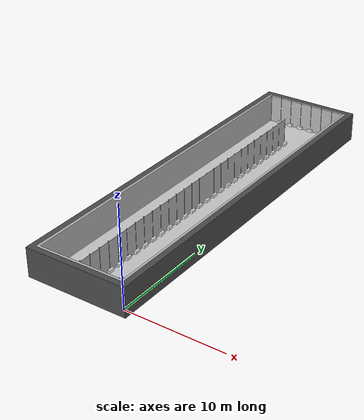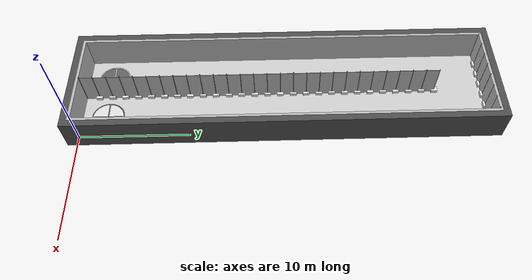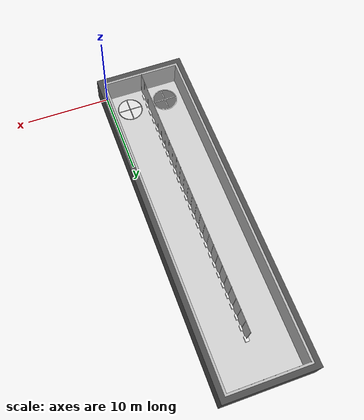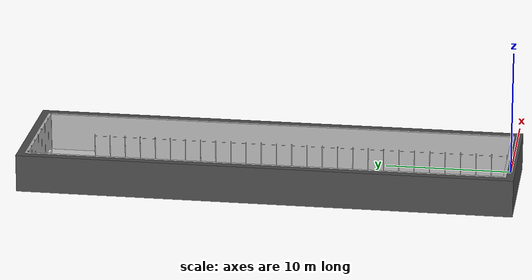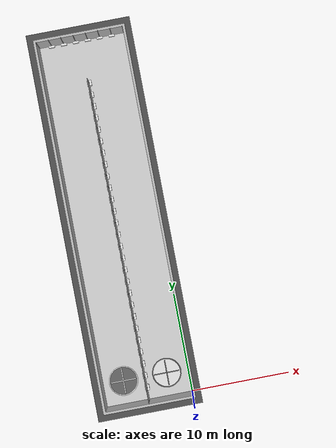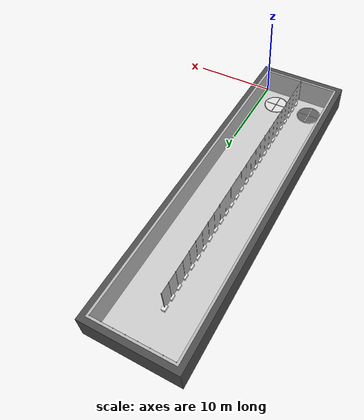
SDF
<?xml version="1.0" ?>
<sdf version="1.4">
  <world name="default">
    <include>
      <uri>model://sun</uri>
    </include>
    <include>
      <uri>model://gamezone</uri>
    </include>
    <include>
      <uri>model://marker_start</uri>
    </include>
    <include>
      <uri>model://marker_end</uri>
    </include>

  </world>
</sdf>

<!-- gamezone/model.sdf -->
<sdf version="1.4">
  <model name="gamezone">
    <static>true</static>

    <link name="walls">
      <pose>0 0 0 0 0 0</pose>
      <collision name="collision">
        <geometry>
          <mesh>
            <uri>model://gamezone/meshes/walls.STL</uri>
          </mesh>
        </geometry>
      </collision>
      <visual name="visual">
        <geometry>
          <mesh>
            <uri>model://gamezone/meshes/walls.STL</uri>
          </mesh>
        </geometry>
        <material>
          <script>
            <uri>model://gamezone/materials/scripts</uri>
            <uri>model://gamezone/materials/textures</uri>
            <name>Croc/Wall</name>
          </script>
        </material>
      </visual>
    </link>

    <link name="sticks">
      <pose>0 0 0 0 0 0</pose>
      <collision name="collision">
        <geometry>
          <mesh>
            <uri>model://gamezone/meshes/sticks.STL</uri>
          </mesh>
        </geometry>
      </collision>
      <visual name="visual">
        <geometry>
          <mesh>
            <uri>model://gamezone/meshes/sticks.STL</uri>
          </mesh>
        </geometry>
        <material>
          <script>
            <name>Gazebo/Grey</name>
          </script>
        </material>
      </visual>
    </link>

    <link name="bricks">
      <pose>0 0 0 0 0 0</pose>
      <collision name="collision">
        <geometry>
          <mesh>
            <uri>model://gamezone/meshes/bricks.STL</uri>
          </mesh>
        </geometry>
      </collision>
      <visual name="visual">
        <geometry>
          <mesh>
            <uri>model://gamezone/meshes/bricks.STL</uri>
          </mesh>
        </geometry>
        <material>
          <script>
            <name>Gazebo/White</name>
          </script>
        </material>
      </visual>
    </link>

    <link name="ground">
	<pose>-4.5 19 0 0 0 0</pose>
      <collision name="collision">
        <geometry>
          <plane>
            <normal>0 0 1</normal>
            <size>10 38</size>
          </plane>
        </geometry>
        <surface>
          <friction>
            <ode>
              <mu>100</mu>
              <mu2>50</mu2>
            </ode>
          </friction>
        </surface>
      </collision>
      <visual name="visual">
        <cast_shadows>true</cast_shadows>
        <geometry>
          <plane>
            <normal>0 0 1</normal>
            <size>10 38</size>
          </plane>
        </geometry>
        <material>
          <script>
            <uri>model://gamezone/materials/scripts</uri>
            <uri>model://gamezone/materials/textures</uri>
            <name>Croc/Floor</name>
          </script>
        </material>
      </visual>
    </link>

     <link name="outside">
      <pose>0 0 0 0 0 0</pose>
      <collision name="collision">
        <geometry>
          <mesh>
            <uri>model://gamezone/meshes/outside.STL</uri>
          </mesh>
        </geometry>
      </collision>
      <visual name="visual">
        <geometry>
          <mesh>
            <uri>model://gamezone/meshes/outside.STL</uri>
          </mesh>
        </geometry>
        <material>
          <script>
            <name>Gazebo/DarkGrey</name>
          </script>
        </material>
      </visual>
    </link>

  </model>
</sdf>

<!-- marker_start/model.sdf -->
<sdf version='1.4'>
  <model name="marker_start">
	<static>true</static>
	<pose>-2.2 2.3 0 0 0 0</pose>
    <link name='marker'>
	  <pose>0 0 0 0 0 0</pose>
      <collision name='collision'>
        <geometry>
          <cylinder>
            <radius>1.5</radius>
			<length>0</length>
          </cylinder>
        </geometry>
      </collision>

      <visual name='visual_black_circle'>
		<material>
			<ambient>0 0 0 0.5</ambient>
			<diffuse>0 0 0 0.5</diffuse>

		</material>
	    <geometry>
	      <cylinder>
            <radius>1.5</radius>
			<length>0.005</length>
          </cylinder>
        </geometry>
      </visual>

      <visual name='visual_white_circle'>
		<material>
			<ambient>1 1 1 0.5</ambient>
			<diffuse>1 1 1 0.5</diffuse>

		</material>
	    <geometry>
	      <cylinder>
            <radius>1.4</radius>
			<length>0.01</length>
          </cylinder>
        </geometry>
      </visual>

	  <visual name='visual_bar_1'>
		<material>
			<ambient>0 0 0 0.5</ambient>
			<diffuse>0 0 0 0.5</diffuse>

		</material>
	    <geometry>
	      <box>
			<size>0.1 2.6 0.015</size>
		  </box>
        </geometry>
      </visual>

	  <visual name='visual_bar_2'>
		<material>
			<ambient>0 0 0 0.5</ambient>
			<diffuse>0 0 0 0.5</diffuse>

		</material>
	    <geometry>
	      <box>
			<size>2.6 0.1 0.015</size>
		  </box>
        </geometry>
      </visual>

	</link>
  </model>
</sdf>

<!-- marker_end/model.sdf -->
<sdf version='1.4'>
  <model name="marker_end">
	<static>true</static>
	<pose>-6.7 2.3 0 0 0 0</pose>
    <link name='marker'>
	  <pose>0 0 0 0 0 0</pose>
      <collision name='collision'>
        <geometry>
          <cylinder>
            <radius>1.5</radius>
			<length>0</length>
          </cylinder>
        </geometry>
      </collision>

      <visual name='visual_white_circle'>
		<material>
			<ambient>1 1 1 0.5</ambient>
			<diffuse>1 1 1 0.5</diffuse>

		</material>
	    <geometry>
	      <cylinder>
            <radius>1.5</radius>
			<length>0.005</length>
          </cylinder>
        </geometry>
      </visual>

      <visual name='visual_black_circle'>
		<material>
			<ambient>0 0 0 0.5</ambient>
			<diffuse>0 0 0 0.5</diffuse>

		</material>
	    <geometry>
	      <cylinder>
            <radius>1.4</radius>
			<length>0.01</length>
          </cylinder>
        </geometry>
      </visual>

	  <visual name='visual_bar_1'>
		<material>
			<ambient>1 1 1 0.5</ambient>
			<diffuse>1 1 1 0.5</diffuse>

		</material>
	    <geometry>
	      <box>
			<size>0.1 2.6 0.015</size>
		  </box>
        </geometry>
      </visual>

	  <visual name='visual_bar_2'>
		<material>
			<ambient>1 1 1 0.5</ambient>
			<diffuse>1 1 1 0.5</diffuse>

		</material>
	    <geometry>
	      <box>
			<size>2.6 0.1 0.015</size>
		  </box>
        </geometry>
      </visual>

	</link>
  </model>
</sdf>
